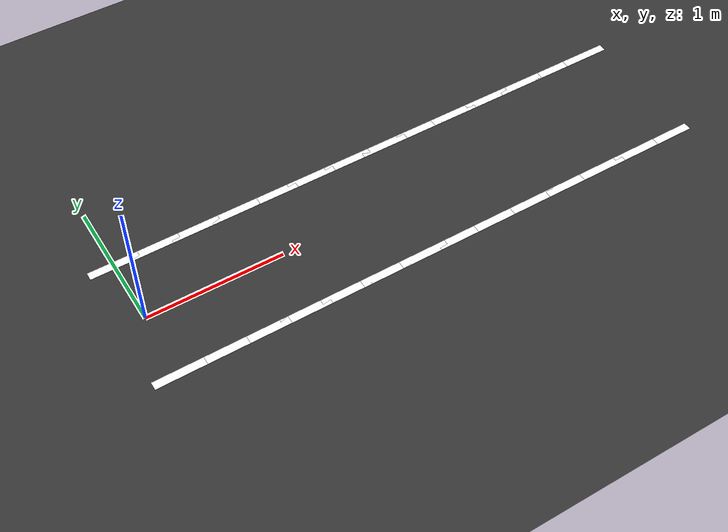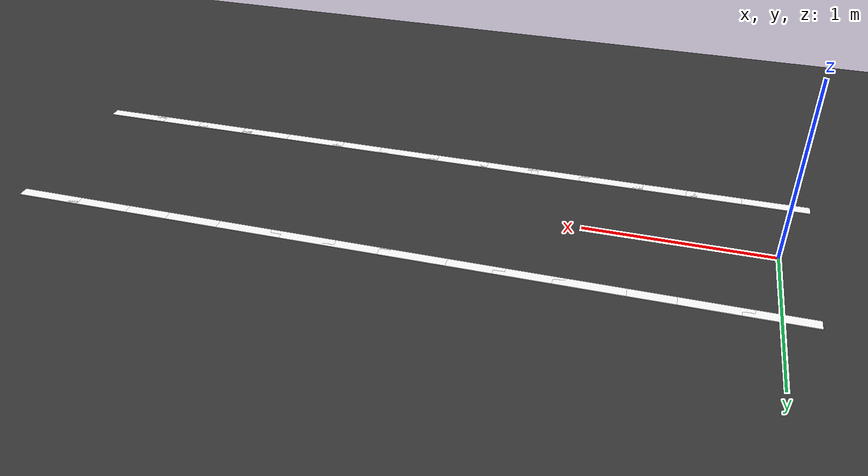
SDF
<sdf version="1.7">
 <world name="cone_lane">
  <model name="ground_plane">
   <static>true</static>
   <link name="link">
    <collision name="collision">
     <geometry><plane><normal>0 0 1</normal><size>150 150</size></plane></geometry>
     <surface><friction><ode><mu>1.0</mu></ode></friction></surface>
    </collision>
    <visual name="visual">
     <geometry><plane><normal>0 0 1</normal><size>100 100</size></plane></geometry>
     <material>
      <ambient>0.16 0.16 0.16 1</ambient>
      <diffuse>0.20 0.20 0.20 1</diffuse>
      <specular>0.02 0.02 0.02 1</specular>
     </material>
    </visual>
   </link>
  </model>
  <model name="line_L001">
   <static>true</static>
   <pose>0.000 0.500 0.0030 0 0 0.0000</pose>
   <link name="link">
    <visual name="v">
     <geometry><box><size>0.360 0.060 0.005</size></box></geometry>
     <material>
      <ambient>0.85 0.85 0.85 1</ambient>
      <diffuse>0.95 0.95 0.95 1</diffuse>
      <specular>0.1 0.1 0.1 1</specular>
     </material>
    </visual>
   </link>
  </model>
  <model name="line_L002">
   <static>true</static>
   <pose>0.300 0.500 0.0030 0 0 0.0000</pose>
   <link name="link">
    <visual name="v">
     <geometry><box><size>0.360 0.060 0.005</size></box></geometry>
     <material>
      <ambient>0.85 0.85 0.85 1</ambient>
      <diffuse>0.95 0.95 0.95 1</diffuse>
      <specular>0.1 0.1 0.1 1</specular>
     </material>
    </visual>
   </link>
  </model>
  <model name="line_L003">
   <static>true</static>
   <pose>0.600 0.500 0.0030 0 0 0.0000</pose>
   <link name="link">
    <visual name="v">
     <geometry><box><size>0.360 0.060 0.005</size></box></geometry>
     <material>
      <ambient>0.85 0.85 0.85 1</ambient>
      <diffuse>0.95 0.95 0.95 1</diffuse>
      <specular>0.1 0.1 0.1 1</specular>
     </material>
    </visual>
   </link>
  </model>
  <model name="line_L004">
   <static>true</static>
   <pose>0.900 0.500 0.0030 0 0 0.0000</pose>
   <link name="link">
    <visual name="v">
     <geometry><box><size>0.360 0.060 0.005</size></box></geometry>
     <material>
      <ambient>0.85 0.85 0.85 1</ambient>
      <diffuse>0.95 0.95 0.95 1</diffuse>
      <specular>0.1 0.1 0.1 1</specular>
     </material>
    </visual>
   </link>
  </model>
  <model name="line_L005">
   <static>true</static>
   <pose>1.200 0.500 0.0030 0 0 0.0000</pose>
   <link name="link">
    <visual name="v">
     <geometry><box><size>0.360 0.060 0.005</size></box></geometry>
     <material>
      <ambient>0.85 0.85 0.85 1</ambient>
      <diffuse>0.95 0.95 0.95 1</diffuse>
      <specular>0.1 0.1 0.1 1</specular>
     </material>
    </visual>
   </link>
  </model>
  <model name="line_L006">
   <static>true</static>
   <pose>1.500 0.500 0.0030 0 0 0.0000</pose>
   <link name="link">
    <visual name="v">
     <geometry><box><size>0.360 0.060 0.005</size></box></geometry>
     <material>
      <ambient>0.85 0.85 0.85 1</ambient>
      <diffuse>0.95 0.95 0.95 1</diffuse>
      <specular>0.1 0.1 0.1 1</specular>
     </material>
    </visual>
   </link>
  </model>
  <model name="line_L007">
   <static>true</static>
   <pose>1.800 0.500 0.0030 0 0 0.0000</pose>
   <link name="link">
    <visual name="v">
     <geometry><box><size>0.360 0.060 0.005</size></box></geometry>
     <material>
      <ambient>0.85 0.85 0.85 1</ambient>
      <diffuse>0.95 0.95 0.95 1</diffuse>
      <specular>0.1 0.1 0.1 1</specular>
     </material>
    </visual>
   </link>
  </model>
  <model name="line_L008">
   <static>true</static>
   <pose>2.100 0.500 0.0030 0 0 0.0000</pose>
   <link name="link">
    <visual name="v">
     <geometry><box><size>0.360 0.060 0.005</size></box></geometry>
     <material>
      <ambient>0.85 0.85 0.85 1</ambient>
      <diffuse>0.95 0.95 0.95 1</diffuse>
      <specular>0.1 0.1 0.1 1</specular>
     </material>
    </visual>
   </link>
  </model>
  <model name="line_L009">
   <static>true</static>
   <pose>2.400 0.500 0.0030 0 0 0.0000</pose>
   <link name="link">
    <visual name="v">
     <geometry><box><size>0.360 0.060 0.005</size></box></geometry>
     <material>
      <ambient>0.85 0.85 0.85 1</ambient>
      <diffuse>0.95 0.95 0.95 1</diffuse>
      <specular>0.1 0.1 0.1 1</specular>
     </material>
    </visual>
   </link>
  </model>
  <model name="line_L010">
   <static>true</static>
   <pose>2.700 0.500 0.0030 0 0 0.0000</pose>
   <link name="link">
    <visual name="v">
     <geometry><box><size>0.360 0.060 0.005</size></box></geometry>
     <material>
      <ambient>0.85 0.85 0.85 1</ambient>
      <diffuse>0.95 0.95 0.95 1</diffuse>
      <specular>0.1 0.1 0.1 1</specular>
     </material>
    </visual>
   </link>
  </model>
  <model name="line_L011">
   <static>true</static>
   <pose>3.000 0.500 0.0030 0 0 0.0000</pose>
   <link name="link">
    <visual name="v">
     <geometry><box><size>0.360 0.060 0.005</size></box></geometry>
     <material>
      <ambient>0.85 0.85 0.85 1</ambient>
      <diffuse>0.95 0.95 0.95 1</diffuse>
      <specular>0.1 0.1 0.1 1</specular>
     </material>
    </visual>
   </link>
  </model>
  <model name="line_L012">
   <static>true</static>
   <pose>3.300 0.500 0.0030 0 0 0.0000</pose>
   <link name="link">
    <visual name="v">
     <geometry><box><size>0.360 0.060 0.005</size></box></geometry>
     <material>
      <ambient>0.85 0.85 0.85 1</ambient>
      <diffuse>0.95 0.95 0.95 1</diffuse>
      <specular>0.1 0.1 0.1 1</specular>
     </material>
    </visual>
   </link>
  </model>
  <model name="line_L013">
   <static>true</static>
   <pose>3.600 0.500 0.0030 0 0 0.0000</pose>
   <link name="link">
    <visual name="v">
     <geometry><box><size>0.360 0.060 0.005</size></box></geometry>
     <material>
      <ambient>0.85 0.85 0.85 1</ambient>
      <diffuse>0.95 0.95 0.95 1</diffuse>
      <specular>0.1 0.1 0.1 1</specular>
     </material>
    </visual>
   </link>
  </model>
  <model name="line_L014">
   <static>true</static>
   <pose>3.900 0.500 0.0030 0 0 0.0000</pose>
   <link name="link">
    <visual name="v">
     <geometry><box><size>0.360 0.060 0.005</size></box></geometry>
     <material>
      <ambient>0.85 0.85 0.85 1</ambient>
      <diffuse>0.95 0.95 0.95 1</diffuse>
      <specular>0.1 0.1 0.1 1</specular>
     </material>
    </visual>
   </link>
  </model>
  <model name="line_R001">
   <static>true</static>
   <pose>0.000 -0.500 0.0030 0 0 0.0000</pose>
   <link name="link">
    <visual name="v">
     <geometry><box><size>0.360 0.060 0.005</size></box></geometry>
     <material>
      <ambient>0.85 0.85 0.85 1</ambient>
      <diffuse>0.95 0.95 0.95 1</diffuse>
      <specular>0.1 0.1 0.1 1</specular>
     </material>
    </visual>
   </link>
  </model>
  <model name="line_R002">
   <static>true</static>
   <pose>0.300 -0.500 0.0030 0 0 0.0000</pose>
   <link name="link">
    <visual name="v">
     <geometry><box><size>0.360 0.060 0.005</size></box></geometry>
     <material>
      <ambient>0.85 0.85 0.85 1</ambient>
      <diffuse>0.95 0.95 0.95 1</diffuse>
      <specular>0.1 0.1 0.1 1</specular>
     </material>
    </visual>
   </link>
  </model>
  <model name="line_R003">
   <static>true</static>
   <pose>0.600 -0.500 0.0030 0 0 0.0000</pose>
   <link name="link">
    <visual name="v">
     <geometry><box><size>0.360 0.060 0.005</size></box></geometry>
     <material>
      <ambient>0.85 0.85 0.85 1</ambient>
      <diffuse>0.95 0.95 0.95 1</diffuse>
      <specular>0.1 0.1 0.1 1</specular>
     </material>
    </visual>
   </link>
  </model>
  <model name="line_R004">
   <static>true</static>
   <pose>0.900 -0.500 0.0030 0 0 0.0000</pose>
   <link name="link">
    <visual name="v">
     <geometry><box><size>0.360 0.060 0.005</size></box></geometry>
     <material>
      <ambient>0.85 0.85 0.85 1</ambient>
      <diffuse>0.95 0.95 0.95 1</diffuse>
      <specular>0.1 0.1 0.1 1</specular>
     </material>
    </visual>
   </link>
  </model>
  <model name="line_R005">
   <static>true</static>
   <pose>1.200 -0.500 0.0030 0 0 0.0000</pose>
   <link name="link">
    <visual name="v">
     <geometry><box><size>0.360 0.060 0.005</size></box></geometry>
     <material>
      <ambient>0.85 0.85 0.85 1</ambient>
      <diffuse>0.95 0.95 0.95 1</diffuse>
      <specular>0.1 0.1 0.1 1</specular>
     </material>
    </visual>
   </link>
  </model>
  <model name="line_R006">
   <static>true</static>
   <pose>1.500 -0.500 0.0030 0 0 0.0000</pose>
   <link name="link">
    <visual name="v">
     <geometry><box><size>0.360 0.060 0.005</size></box></geometry>
     <material>
      <ambient>0.85 0.85 0.85 1</ambient>
      <diffuse>0.95 0.95 0.95 1</diffuse>
      <specular>0.1 0.1 0.1 1</specular>
     </material>
    </visual>
   </link>
  </model>
  <model name="line_R007">
   <static>true</static>
   <pose>1.800 -0.500 0.0030 0 0 0.0000</pose>
   <link name="link">
    <visual name="v">
     <geometry><box><size>0.360 0.060 0.005</size></box></geometry>
     <material>
      <ambient>0.85 0.85 0.85 1</ambient>
      <diffuse>0.95 0.95 0.95 1</diffuse>
      <specular>0.1 0.1 0.1 1</specular>
     </material>
    </visual>
   </link>
  </model>
  <model name="line_R008">
   <static>true</static>
   <pose>2.100 -0.500 0.0030 0 0 0.0000</pose>
   <link name="link">
    <visual name="v">
     <geometry><box><size>0.360 0.060 0.005</size></box></geometry>
     <material>
      <ambient>0.85 0.85 0.85 1</ambient>
      <diffuse>0.95 0.95 0.95 1</diffuse>
      <specular>0.1 0.1 0.1 1</specular>
     </material>
    </visual>
   </link>
  </model>
  <model name="line_R009">
   <static>true</static>
   <pose>2.400 -0.500 0.0030 0 0 0.0000</pose>
   <link name="link">
    <visual name="v">
     <geometry><box><size>0.360 0.060 0.005</size></box></geometry>
     <material>
      <ambient>0.85 0.85 0.85 1</ambient>
      <diffuse>0.95 0.95 0.95 1</diffuse>
      <specular>0.1 0.1 0.1 1</specular>
     </material>
    </visual>
   </link>
  </model>
  <model name="line_R010">
   <static>true</static>
   <pose>2.700 -0.500 0.0030 0 0 0.0000</pose>
   <link name="link">
    <visual name="v">
     <geometry><box><size>0.360 0.060 0.005</size></box></geometry>
     <material>
      <ambient>0.85 0.85 0.85 1</ambient>
      <diffuse>0.95 0.95 0.95 1</diffuse>
      <specular>0.1 0.1 0.1 1</specular>
     </material>
    </visual>
   </link>
  </model>
  <model name="line_R011">
   <static>true</static>
   <pose>3.000 -0.500 0.0030 0 0 0.0000</pose>
   <link name="link">
    <visual name="v">
     <geometry><box><size>0.360 0.060 0.005</size></box></geometry>
     <material>
      <ambient>0.85 0.85 0.85 1</ambient>
      <diffuse>0.95 0.95 0.95 1</diffuse>
      <specular>0.1 0.1 0.1 1</specular>
     </material>
    </visual>
   </link>
  </model>
  <model name="line_R012">
   <static>true</static>
   <pose>3.300 -0.500 0.0030 0 0 0.0000</pose>
   <link name="link">
    <visual name="v">
     <geometry><box><size>0.360 0.060 0.005</size></box></geometry>
     <material>
      <ambient>0.85 0.85 0.85 1</ambient>
      <diffuse>0.95 0.95 0.95 1</diffuse>
      <specular>0.1 0.1 0.1 1</specular>
     </material>
    </visual>
   </link>
  </model>
  <model name="line_R013">
   <static>true</static>
   <pose>3.600 -0.500 0.0030 0 0 0.0000</pose>
   <link name="link">
    <visual name="v">
     <geometry><box><size>0.360 0.060 0.005</size></box></geometry>
     <material>
      <ambient>0.85 0.85 0.85 1</ambient>
      <diffuse>0.95 0.95 0.95 1</diffuse>
      <specular>0.1 0.1 0.1 1</specular>
     </material>
    </visual>
   </link>
  </model>
  <model name="line_R014">
   <static>true</static>
   <pose>3.900 -0.500 0.0030 0 0 0.0000</pose>
   <link name="link">
    <visual name="v">
     <geometry><box><size>0.360 0.060 0.005</size></box></geometry>
     <material>
      <ambient>0.85 0.85 0.85 1</ambient>
      <diffuse>0.95 0.95 0.95 1</diffuse>
      <specular>0.1 0.1 0.1 1</specular>
     </material>
    </visual>
   </link>
  </model>
 </world>
</sdf>
